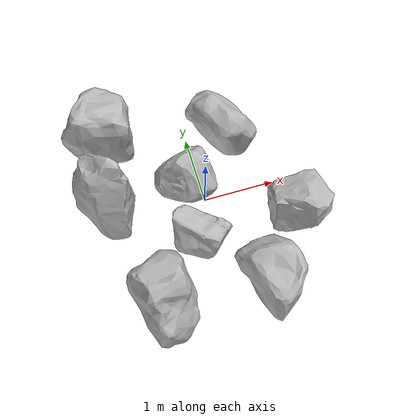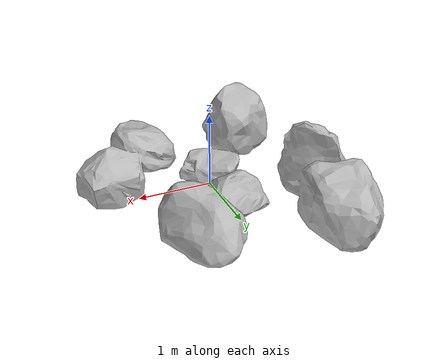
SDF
<?xml version="1.0" ?>
<sdf version='1.5'>
  <model name="boulder_1">
      <static>false</static>
      <link name='boulder_1_link'>
 	<inertial>
        	<mass>50</mass>
        	<inertia>
          	<ixx>10</ixx>
          	<ixy>0</ixy>
          	<ixz>0</ixz>
          	<iyy>10</iyy>
          	<iyz>0</iyz>
          	<izz>10</izz>
        	</inertia>
      	</inertial>
        <collision name='boulder_1_collision'>
          <geometry>
            <box>
              <size>4 4 0.01</size>
            </box>
          </geometry>
        </collision>

        <visual name='boulder_1_mesh'>
	  <cast_shadows>true</cast_shadows>
          <geometry>
            <mesh>
              <uri>model://boulder_1/meshes/model.dae</uri>
              <scale>1 1 1</scale>
            </mesh>
          </geometry>
        </visual>
      </link>
  </model>
</sdf>
